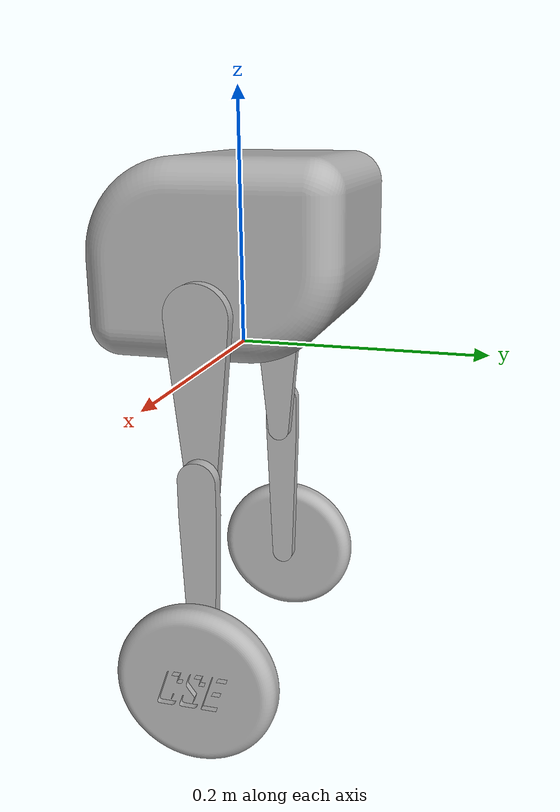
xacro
<?xml version="1.0" ?>
<robot name="csento-4ac" xmlns:xacro="http://www.ros.org/wiki/xacro">

<xacro:include filename="$(find csento-4ac_description)/urdf/materials.xacro" />
<xacro:include filename="$(find csento-4ac_description)/urdf/csento-4ac.trans" />
<xacro:include filename="$(find csento-4ac_description)/urdf/csento-4ac.gazebo" />
<link name="base_link">
  <inertial>
    <origin xyz="1.2221840620011837e-15 -1.344402468201302e-15 0.07499422815852935" rpy="0 0 0"/>
    <mass value="5.048349302415931"/>
    <inertia ixx="0.022851" iyy="0.021218" izz="0.027446" ixy="0.0" iyz="-0.001749" ixz="0.0"/>
  </inertial>
  <visual>
    <origin xyz="0 0 0" rpy="0 0 0"/>
    <geometry>
      <mesh filename="file://$(find csento-4ac_description)/meshes/base_link.stl" scale="0.001 0.001 0.001"/>
    </geometry>
    <material name="silver"/>
  </visual>
  <collision>
    <origin xyz="0 0 0" rpy="0 0 0"/>
    <geometry>
      <mesh filename="file://$(find csento-4ac_description)/meshes/base_link.stl" scale="0.001 0.001 0.001"/>
    </geometry>
  </collision>
</link>

<link name="left_leg_link_1">
  <inertial>
    <origin xyz="0.005000000000001087 3.4123934257479503e-06 -0.04364139310878208" rpy="0 0 0"/>
    <mass value="0.049572840146082736"/>
    <inertia ixx="0.000134" iyy="0.000131" izz="3e-06" ixy="0.0" iyz="0.0" ixz="0.0"/>
  </inertial>
  <visual>
    <origin xyz="-0.105 -0.0 0.109" rpy="0 0 0"/>
    <geometry>
      <mesh filename="file://$(find csento-4ac_description)/meshes/left_leg_link_1.stl" scale="0.001 0.001 0.001"/>
    </geometry>
    <material name="silver"/>
  </visual>
  <collision>
    <origin xyz="-0.105 -0.0 0.109" rpy="0 0 0"/>
    <geometry>
      <mesh filename="file://$(find csento-4ac_description)/meshes/left_leg_link_1.stl" scale="0.001 0.001 0.001"/>
    </geometry>
  </collision>
</link>

<link name="right_leg_link_1">
  <inertial>
    <origin xyz="-0.004999999999998797 3.412393425712423e-06 -0.04364139310878214" rpy="0 0 0"/>
    <mass value="0.049572840146082736"/>
    <inertia ixx="0.000134" iyy="0.000131" izz="3e-06" ixy="-0.0" iyz="0.0" ixz="-0.0"/>
  </inertial>
  <visual>
    <origin xyz="0.105 0.0 0.109" rpy="0 0 0"/>
    <geometry>
      <mesh filename="file://$(find csento-4ac_description)/meshes/right_leg_link_1.stl" scale="0.001 0.001 0.001"/>
    </geometry>
    <material name="silver"/>
  </visual>
  <collision>
    <origin xyz="0.105 0.0 0.109" rpy="0 0 0"/>
    <geometry>
      <mesh filename="file://$(find csento-4ac_description)/meshes/right_leg_link_1.stl" scale="0.001 0.001 0.001"/>
    </geometry>
  </collision>
</link>

<link name="right_wheel_1">
  <inertial>
    <origin xyz="-0.012378168968434841 -1.0395457435431125e-05 -1.592358780944103e-08" rpy="0 0 0"/>
    <mass value="0.32978061044955914"/>
    <inertia ixx="0.000671" iyy="0.000352" izz="0.000351" ixy="-0.0" iyz="-0.0" ixz="-0.0"/>
  </inertial>
  <visual>
    <origin xyz="0.115 -7e-06 0.242" rpy="0 0 0"/>
    <geometry>
      <mesh filename="file://$(find csento-4ac_description)/meshes/right_wheel_1.stl" scale="0.001 0.001 0.001"/>
    </geometry>
    <material name="silver"/>
  </visual>
  <collision>
    <origin xyz="0.115 -7e-06 0.242" rpy="0 0 0"/>
    <geometry>
      <mesh filename="file://$(find csento-4ac_description)/meshes/right_wheel_1.stl" scale="0.001 0.001 0.001"/>
    </geometry>
  </collision>
</link>

<link name="left_wheel_1">
  <inertial>
    <origin xyz="0.012378168809641668 1.0528252256866493e-05 -1.4934656511478295e-08" rpy="0 0 0"/>
    <mass value="0.3297801928414847"/>
    <inertia ixx="0.000671" iyy="0.000352" izz="0.000351" ixy="-0.0" iyz="0.0" ixz="0.0"/>
  </inertial>
  <visual>
    <origin xyz="-0.115 -7e-06 0.242" rpy="0 0 0"/>
    <geometry>
      <mesh filename="file://$(find csento-4ac_description)/meshes/left_wheel_1.stl" scale="0.001 0.001 0.001"/>
    </geometry>
    <material name="silver"/>
  </visual>
  <collision>
    <origin xyz="-0.115 -7e-06 0.242" rpy="0 0 0"/>
    <geometry>
      <mesh filename="file://$(find csento-4ac_description)/meshes/left_wheel_1.stl" scale="0.001 0.001 0.001"/>
    </geometry>
  </collision>
</link>

<link name="right_hip_main_link_1">
  <inertial>
    <origin xyz="-0.004999999999998769 2.9738073348717364e-05 -0.05455435422776721" rpy="0 0 0"/>
    <mass value="0.06745093371390704"/>
    <inertia ixx="0.00017" iyy="0.000162" izz="9e-06" ixy="-0.0" iyz="-0.0" ixz="0.0"/>
  </inertial>
  <visual>
    <origin xyz="0.095 -0.0 -0.04" rpy="0 0 0"/>
    <geometry>
      <mesh filename="file://$(find csento-4ac_description)/meshes/right_hip_main_link_1.stl" scale="0.001 0.001 0.001"/>
    </geometry>
    <material name="silver"/>
  </visual>
  <collision>
    <origin xyz="0.095 -0.0 -0.04" rpy="0 0 0"/>
    <geometry>
      <mesh filename="file://$(find csento-4ac_description)/meshes/right_hip_main_link_1.stl" scale="0.001 0.001 0.001"/>
    </geometry>
  </collision>
</link>

<link name="left_hip_main_link_1">
  <inertial>
    <origin xyz="0.005000000000001184 2.973807334878842e-05 -0.054554354227767186" rpy="0 0 0"/>
    <mass value="0.06745093371390704"/>
    <inertia ixx="0.00017" iyy="0.000162" izz="9e-06" ixy="-0.0" iyz="-0.0" ixz="0.0"/>
  </inertial>
  <visual>
    <origin xyz="-0.095 -0.0 -0.04" rpy="0 0 0"/>
    <geometry>
      <mesh filename="file://$(find csento-4ac_description)/meshes/left_hip_main_link_1.stl" scale="0.001 0.001 0.001"/>
    </geometry>
    <material name="silver"/>
  </visual>
  <collision>
    <origin xyz="-0.095 -0.0 -0.04" rpy="0 0 0"/>
    <geometry>
      <mesh filename="file://$(find csento-4ac_description)/meshes/left_hip_main_link_1.stl" scale="0.001 0.001 0.001"/>
    </geometry>
  </collision>
</link>

<joint name="Revolute 4" type="continuous">
  <origin xyz="0.01 0.0 -0.149" rpy="0 0 0"/>
  <parent link="left_hip_main_link_1"/>
  <child link="left_leg_link_1"/>
  <axis xyz="1.0 0.0 0.0"/>
</joint>

<joint name="Revolute 12" type="continuous">
  <origin xyz="-0.01 -0.0 -0.149" rpy="0 0 0"/>
  <parent link="right_hip_main_link_1"/>
  <child link="right_leg_link_1"/>
  <axis xyz="-1.0 -0.0 -0.0"/>
</joint>

<joint name="Revolute 13" type="continuous">
  <origin xyz="-0.01 7e-06 -0.133" rpy="0 0 0"/>
  <parent link="right_leg_link_1"/>
  <child link="right_wheel_1"/>
  <axis xyz="-1.0 -0.0 0.0"/>
</joint>

<joint name="Revolute 14" type="continuous">
  <origin xyz="0.01 7e-06 -0.133" rpy="0 0 0"/>
  <parent link="left_leg_link_1"/>
  <child link="left_wheel_1"/>
  <axis xyz="1.0 0.0 -0.0"/>
</joint>

<joint name="Revolute 15" type="continuous">
  <origin xyz="-0.095 0.0 0.04" rpy="0 0 0"/>
  <parent link="base_link"/>
  <child link="right_hip_main_link_1"/>
  <axis xyz="-1.0 0.0 0.0"/>
</joint>

<joint name="Revolute 16" type="continuous">
  <origin xyz="0.095 0.0 0.04" rpy="0 0 0"/>
  <parent link="base_link"/>
  <child link="left_hip_main_link_1"/>
  <axis xyz="1.0 0.0 0.0"/>
</joint>

</robot>

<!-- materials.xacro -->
<robot name="csento-4ac" xmlns:xacro="http://www.ros.org/wiki/xacro" >

<material name="silver">
  <color rgba="0.700 0.700 0.700 1.000"/>
</material>

</robot>

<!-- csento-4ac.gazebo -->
<robot name="csento-4ac" xmlns:xacro="http://www.ros.org/wiki/xacro" >

<xacro:property name="body_color" value="Gazebo/Silver" />

<gazebo>
  <plugin name="control" filename="libgazebo_ros_control.so"/>
</gazebo>
<gazebo reference="base_link">
  <material>${body_color}</material>
  <mu1>0.2</mu1>
  <mu2>0.2</mu2>
  <self_collide>true</self_collide>
  <gravity>true</gravity>
</gazebo>

<gazebo reference="left_leg_link_1">
  <material>${body_color}</material>
  <mu1>0.2</mu1>
  <mu2>0.2</mu2>
  <self_collide>true</self_collide>
</gazebo>

<gazebo reference="right_leg_link_1">
  <material>${body_color}</material>
  <mu1>0.2</mu1>
  <mu2>0.2</mu2>
  <self_collide>true</self_collide>
</gazebo>

<gazebo reference="right_wheel_1">
  <material>${body_color}</material>
  <mu1>0.2</mu1>
  <mu2>0.2</mu2>
  <self_collide>true</self_collide>
</gazebo>

<gazebo reference="left_wheel_1">
  <material>${body_color}</material>
  <mu1>0.2</mu1>
  <mu2>0.2</mu2>
  <self_collide>true</self_collide>
</gazebo>

<gazebo reference="right_hip_main_link_1">
  <material>${body_color}</material>
  <mu1>0.2</mu1>
  <mu2>0.2</mu2>
  <self_collide>true</self_collide>
</gazebo>

<gazebo reference="left_hip_main_link_1">
  <material>${body_color}</material>
  <mu1>0.2</mu1>
  <mu2>0.2</mu2>
  <self_collide>true</self_collide>
</gazebo>

</robot>
